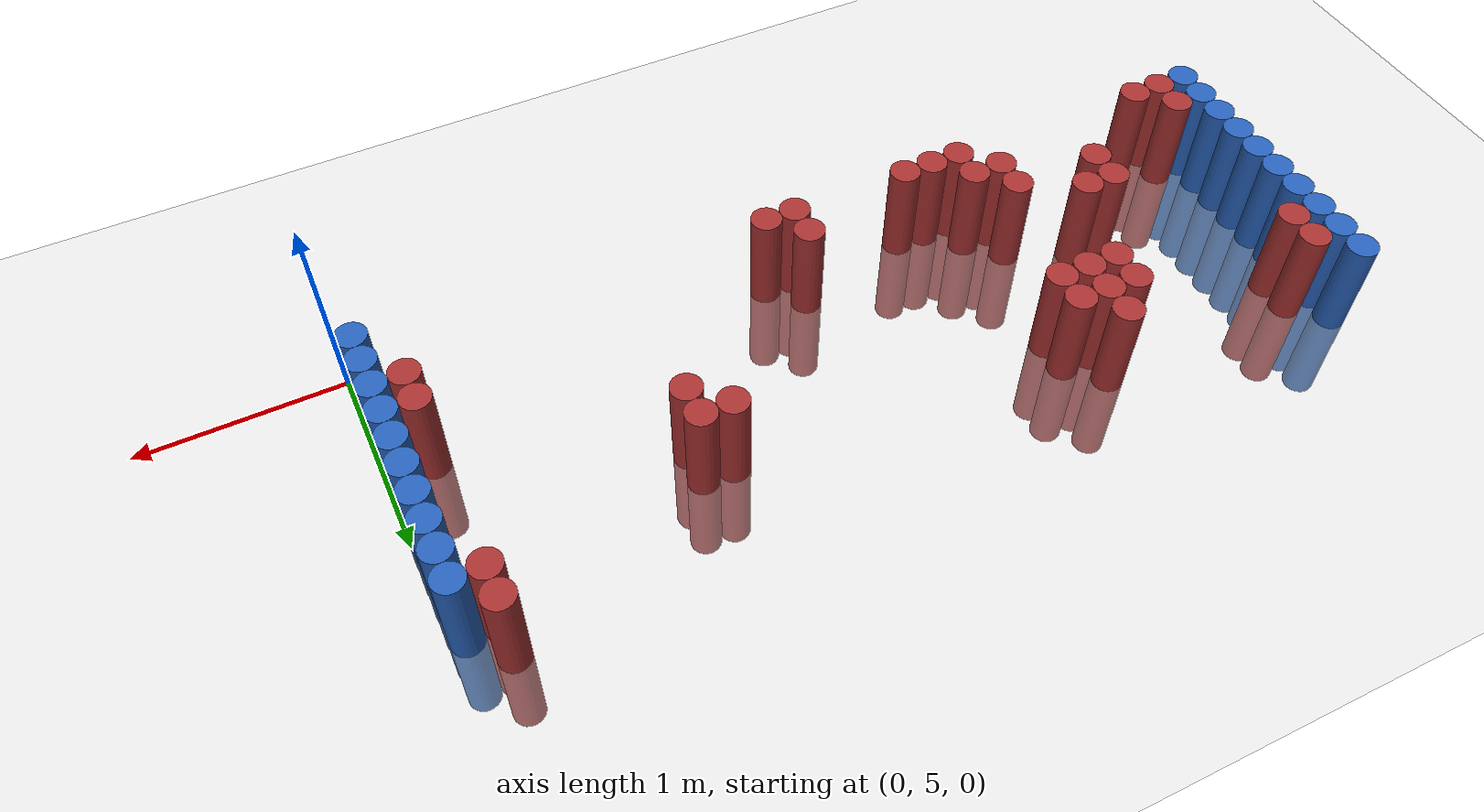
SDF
<sdf version="1.6">
 <world name="default">
  <model name="ground_plane">
   <static>1</static>
   <link name="link">
    <collision name="collision">
     <geometry><plane><normal>0 0 1</normal><size>100 100</size></plane></geometry>
     <surface><friction><ode><mu>100</mu><mu2>50</mu2></ode></friction></surface>
    </collision>
    <visual name="visual">
     <cast_shadows>0</cast_shadows>
     <geometry><plane><normal>0 0 1</normal><size>100 100</size></plane></geometry>
     <material>
      <script><uri>file://media/materials/scripts/gazebo.material</uri><name>Gazebo/Grey</name></script>
     </material>
    </visual>
   </link>
  </model>
  <model name="unit_cylinder_97">
   <static>1</static>
   <pose>-4.425000 5.325000 0.000000 0.000000 0.000000 0.000000</pose>
   <link name="link">
    <inertial>
     <mass>1</mass>
     <inertia><ixx>0.145833</ixx><ixy>0</ixy><ixz>0</ixz><iyy>0.145833</iyy><iyz>0</iyz><izz>0.125</izz></inertia>
    </inertial>
    <collision name="collision">
     <geometry><cylinder><radius>0.075000</radius><length>1</length></cylinder></geometry>
    </collision>
    <visual name="visual">
     <geometry><cylinder><radius>0.075000</radius><length>1</length></cylinder></geometry>
     <material>
      <ambient>0.152000 0.379000 0.720000 1</ambient>
      <diffuse>0.152000 0.379000 0.720000 1</diffuse>
     </material>
     <material>
      <script><name>Gazebo/Grey</name><uri>file://media/materials/scripts/gazebo.material</uri></script>
     </material>
    </visual>
   </link>
  </model>
  <model name="unit_cylinder_98">
   <static>1</static>
   <pose>-4.425000 5.475000 0.000000 0.000000 0.000000 0.000000</pose>
   <link name="link">
    <inertial>
     <mass>1</mass>
     <inertia><ixx>0.145833</ixx><ixy>0</ixy><ixz>0</ixz><iyy>0.145833</iyy><iyz>0</iyz><izz>0.125</izz></inertia>
    </inertial>
    <collision name="collision">
     <geometry><cylinder><radius>0.075000</radius><length>1</length></cylinder></geometry>
    </collision>
    <visual name="visual">
     <geometry><cylinder><radius>0.075000</radius><length>1</length></cylinder></geometry>
     <material>
      <ambient>0.152000 0.379000 0.720000 1</ambient>
      <diffuse>0.152000 0.379000 0.720000 1</diffuse>
     </material>
     <material>
      <script><name>Gazebo/Grey</name><uri>file://media/materials/scripts/gazebo.material</uri></script>
     </material>
    </visual>
   </link>
  </model>
  <model name="unit_cylinder_99">
   <static>1</static>
   <pose>-4.425000 5.625000 0.000000 0.000000 0.000000 0.000000</pose>
   <link name="link">
    <inertial>
     <mass>1</mass>
     <inertia><ixx>0.145833</ixx><ixy>0</ixy><ixz>0</ixz><iyy>0.145833</iyy><iyz>0</iyz><izz>0.125</izz></inertia>
    </inertial>
    <collision name="collision">
     <geometry><cylinder><radius>0.075000</radius><length>1</length></cylinder></geometry>
    </collision>
    <visual name="visual">
     <geometry><cylinder><radius>0.075000</radius><length>1</length></cylinder></geometry>
     <material>
      <ambient>0.152000 0.379000 0.720000 1</ambient>
      <diffuse>0.152000 0.379000 0.720000 1</diffuse>
     </material>
     <material>
      <script><name>Gazebo/Grey</name><uri>file://media/materials/scripts/gazebo.material</uri></script>
     </material>
    </visual>
   </link>
  </model>
  <model name="unit_cylinder_100">
   <static>1</static>
   <pose>-4.425000 5.775000 0.000000 0.000000 0.000000 0.000000</pose>
   <link name="link">
    <inertial>
     <mass>1</mass>
     <inertia><ixx>0.145833</ixx><ixy>0</ixy><ixz>0</ixz><iyy>0.145833</iyy><iyz>0</iyz><izz>0.125</izz></inertia>
    </inertial>
    <collision name="collision">
     <geometry><cylinder><radius>0.075000</radius><length>1</length></cylinder></geometry>
    </collision>
    <visual name="visual">
     <geometry><cylinder><radius>0.075000</radius><length>1</length></cylinder></geometry>
     <material>
      <ambient>0.152000 0.379000 0.720000 1</ambient>
      <diffuse>0.152000 0.379000 0.720000 1</diffuse>
     </material>
     <material>
      <script><name>Gazebo/Grey</name><uri>file://media/materials/scripts/gazebo.material</uri></script>
     </material>
    </visual>
   </link>
  </model>
  <model name="unit_cylinder_101">
   <static>1</static>
   <pose>-4.425000 5.925000 0.000000 0.000000 0.000000 0.000000</pose>
   <link name="link">
    <inertial>
     <mass>1</mass>
     <inertia><ixx>0.145833</ixx><ixy>0</ixy><ixz>0</ixz><iyy>0.145833</iyy><iyz>0</iyz><izz>0.125</izz></inertia>
    </inertial>
    <collision name="collision">
     <geometry><cylinder><radius>0.075000</radius><length>1</length></cylinder></geometry>
    </collision>
    <visual name="visual">
     <geometry><cylinder><radius>0.075000</radius><length>1</length></cylinder></geometry>
     <material>
      <ambient>0.152000 0.379000 0.720000 1</ambient>
      <diffuse>0.152000 0.379000 0.720000 1</diffuse>
     </material>
     <material>
      <script><name>Gazebo/Grey</name><uri>file://media/materials/scripts/gazebo.material</uri></script>
     </material>
    </visual>
   </link>
  </model>
  <model name="unit_cylinder_102">
   <static>1</static>
   <pose>-4.425000 6.075000 0.000000 0.000000 0.000000 0.000000</pose>
   <link name="link">
    <inertial>
     <mass>1</mass>
     <inertia><ixx>0.145833</ixx><ixy>0</ixy><ixz>0</ixz><iyy>0.145833</iyy><iyz>0</iyz><izz>0.125</izz></inertia>
    </inertial>
    <collision name="collision">
     <geometry><cylinder><radius>0.075000</radius><length>1</length></cylinder></geometry>
    </collision>
    <visual name="visual">
     <geometry><cylinder><radius>0.075000</radius><length>1</length></cylinder></geometry>
     <material>
      <ambient>0.152000 0.379000 0.720000 1</ambient>
      <diffuse>0.152000 0.379000 0.720000 1</diffuse>
     </material>
     <material>
      <script><name>Gazebo/Grey</name><uri>file://media/materials/scripts/gazebo.material</uri></script>
     </material>
    </visual>
   </link>
  </model>
  <model name="unit_cylinder_103">
   <static>1</static>
   <pose>-4.425000 6.225000 0.000000 0.000000 0.000000 0.000000</pose>
   <link name="link">
    <inertial>
     <mass>1</mass>
     <inertia><ixx>0.145833</ixx><ixy>0</ixy><ixz>0</ixz><iyy>0.145833</iyy><iyz>0</iyz><izz>0.125</izz></inertia>
    </inertial>
    <collision name="collision">
     <geometry><cylinder><radius>0.075000</radius><length>1</length></cylinder></geometry>
    </collision>
    <visual name="visual">
     <geometry><cylinder><radius>0.075000</radius><length>1</length></cylinder></geometry>
     <material>
      <ambient>0.152000 0.379000 0.720000 1</ambient>
      <diffuse>0.152000 0.379000 0.720000 1</diffuse>
     </material>
     <material>
      <script><name>Gazebo/Grey</name><uri>file://media/materials/scripts/gazebo.material</uri></script>
     </material>
    </visual>
   </link>
  </model>
  <model name="unit_cylinder_104">
   <static>1</static>
   <pose>-4.425000 6.375000 0.000000 0.000000 0.000000 0.000000</pose>
   <link name="link">
    <inertial>
     <mass>1</mass>
     <inertia><ixx>0.145833</ixx><ixy>0</ixy><ixz>0</ixz><iyy>0.145833</iyy><iyz>0</iyz><izz>0.125</izz></inertia>
    </inertial>
    <collision name="collision">
     <geometry><cylinder><radius>0.075000</radius><length>1</length></cylinder></geometry>
    </collision>
    <visual name="visual">
     <geometry><cylinder><radius>0.075000</radius><length>1</length></cylinder></geometry>
     <material>
      <ambient>0.152000 0.379000 0.720000 1</ambient>
      <diffuse>0.152000 0.379000 0.720000 1</diffuse>
     </material>
     <material>
      <script><name>Gazebo/Grey</name><uri>file://media/materials/scripts/gazebo.material</uri></script>
     </material>
    </visual>
   </link>
  </model>
  <model name="unit_cylinder_105">
   <static>1</static>
   <pose>-4.425000 6.525000 0.000000 0.000000 0.000000 0.000000</pose>
   <link name="link">
    <inertial>
     <mass>1</mass>
     <inertia><ixx>0.145833</ixx><ixy>0</ixy><ixz>0</ixz><iyy>0.145833</iyy><iyz>0</iyz><izz>0.125</izz></inertia>
    </inertial>
    <collision name="collision">
     <geometry><cylinder><radius>0.075000</radius><length>1</length></cylinder></geometry>
    </collision>
    <visual name="visual">
     <geometry><cylinder><radius>0.075000</radius><length>1</length></cylinder></geometry>
     <material>
      <ambient>0.152000 0.379000 0.720000 1</ambient>
      <diffuse>0.152000 0.379000 0.720000 1</diffuse>
     </material>
     <material>
      <script><name>Gazebo/Grey</name><uri>file://media/materials/scripts/gazebo.material</uri></script>
     </material>
    </visual>
   </link>
  </model>
  <model name="unit_cylinder_106">
   <static>1</static>
   <pose>-4.425000 6.675000 0.000000 0.000000 0.000000 0.000000</pose>
   <link name="link">
    <inertial>
     <mass>1</mass>
     <inertia><ixx>0.145833</ixx><ixy>0</ixy><ixz>0</ixz><iyy>0.145833</iyy><iyz>0</iyz><izz>0.125</izz></inertia>
    </inertial>
    <collision name="collision">
     <geometry><cylinder><radius>0.075000</radius><length>1</length></cylinder></geometry>
    </collision>
    <visual name="visual">
     <geometry><cylinder><radius>0.075000</radius><length>1</length></cylinder></geometry>
     <material>
      <ambient>0.152000 0.379000 0.720000 1</ambient>
      <diffuse>0.152000 0.379000 0.720000 1</diffuse>
     </material>
     <material>
      <script><name>Gazebo/Grey</name><uri>file://media/materials/scripts/gazebo.material</uri></script>
     </material>
    </visual>
   </link>
  </model>
  <model name="unit_cylinder_127">
   <static>1</static>
   <pose>-4.275000 5.325000 0.000000 0.000000 0.000000 0.000000</pose>
   <link name="link">
    <inertial>
     <mass>1</mass>
     <inertia><ixx>0.145833</ixx><ixy>0</ixy><ixz>0</ixz><iyy>0.145833</iyy><iyz>0</iyz><izz>0.125</izz></inertia>
    </inertial>
    <collision name="collision">
     <geometry><cylinder><radius>0.075000</radius><length>1</length></cylinder></geometry>
    </collision>
    <visual name="visual">
     <geometry><cylinder><radius>0.075000</radius><length>1</length></cylinder></geometry>
     <material>
      <ambient>0.648000 0.192000 0.192000 1</ambient>
      <diffuse>0.648000 0.192000 0.192000 1</diffuse>
     </material>
     <material>
      <script><name>Gazebo/Grey</name><uri>file://media/materials/scripts/gazebo.material</uri></script>
     </material>
    </visual>
   </link>
  </model>
  <model name="unit_cylinder_128">
   <static>1</static>
   <pose>-4.275000 5.475000 0.000000 0.000000 0.000000 0.000000</pose>
   <link name="link">
    <inertial>
     <mass>1</mass>
     <inertia><ixx>0.145833</ixx><ixy>0</ixy><ixz>0</ixz><iyy>0.145833</iyy><iyz>0</iyz><izz>0.125</izz></inertia>
    </inertial>
    <collision name="collision">
     <geometry><cylinder><radius>0.075000</radius><length>1</length></cylinder></geometry>
    </collision>
    <visual name="visual">
     <geometry><cylinder><radius>0.075000</radius><length>1</length></cylinder></geometry>
     <material>
      <ambient>0.648000 0.192000 0.192000 1</ambient>
      <diffuse>0.648000 0.192000 0.192000 1</diffuse>
     </material>
     <material>
      <script><name>Gazebo/Grey</name><uri>file://media/materials/scripts/gazebo.material</uri></script>
     </material>
    </visual>
   </link>
  </model>
  <model name="unit_cylinder_129">
   <static>1</static>
   <pose>-4.275000 6.375000 0.000000 0.000000 0.000000 0.000000</pose>
   <link name="link">
    <inertial>
     <mass>1</mass>
     <inertia><ixx>0.145833</ixx><ixy>0</ixy><ixz>0</ixz><iyy>0.145833</iyy><iyz>0</iyz><izz>0.125</izz></inertia>
    </inertial>
    <collision name="collision">
     <geometry><cylinder><radius>0.075000</radius><length>1</length></cylinder></geometry>
    </collision>
    <visual name="visual">
     <geometry><cylinder><radius>0.075000</radius><length>1</length></cylinder></geometry>
     <material>
      <ambient>0.648000 0.192000 0.192000 1</ambient>
      <diffuse>0.648000 0.192000 0.192000 1</diffuse>
     </material>
     <material>
      <script><name>Gazebo/Grey</name><uri>file://media/materials/scripts/gazebo.material</uri></script>
     </material>
    </visual>
   </link>
  </model>
  <model name="unit_cylinder_130">
   <static>1</static>
   <pose>-4.275000 6.525000 0.000000 0.000000 0.000000 0.000000</pose>
   <link name="link">
    <inertial>
     <mass>1</mass>
     <inertia><ixx>0.145833</ixx><ixy>0</ixy><ixz>0</ixz><iyy>0.145833</iyy><iyz>0</iyz><izz>0.125</izz></inertia>
    </inertial>
    <collision name="collision">
     <geometry><cylinder><radius>0.075000</radius><length>1</length></cylinder></geometry>
    </collision>
    <visual name="visual">
     <geometry><cylinder><radius>0.075000</radius><length>1</length></cylinder></geometry>
     <material>
      <ambient>0.648000 0.192000 0.192000 1</ambient>
      <diffuse>0.648000 0.192000 0.192000 1</diffuse>
     </material>
     <material>
      <script><name>Gazebo/Grey</name><uri>file://media/materials/scripts/gazebo.material</uri></script>
     </material>
    </visual>
   </link>
  </model>
  <model name="unit_cylinder_135">
   <static>1</static>
   <pose>-4.125000 5.325000 0.000000 0.000000 0.000000 0.000000</pose>
   <link name="link">
    <inertial>
     <mass>1</mass>
     <inertia><ixx>0.145833</ixx><ixy>0</ixy><ixz>0</ixz><iyy>0.145833</iyy><iyz>0</iyz><izz>0.125</izz></inertia>
    </inertial>
    <collision name="collision">
     <geometry><cylinder><radius>0.075000</radius><length>1</length></cylinder></geometry>
    </collision>
    <visual name="visual">
     <geometry><cylinder><radius>0.075000</radius><length>1</length></cylinder></geometry>
     <material>
      <ambient>0.648000 0.192000 0.192000 1</ambient>
      <diffuse>0.648000 0.192000 0.192000 1</diffuse>
     </material>
     <material>
      <script><name>Gazebo/Grey</name><uri>file://media/materials/scripts/gazebo.material</uri></script>
     </material>
    </visual>
   </link>
  </model>
  <model name="unit_cylinder_142">
   <static>1</static>
   <pose>-3.675000 5.625000 0.000000 0.000000 0.000000 0.000000</pose>
   <link name="link">
    <inertial>
     <mass>1</mass>
     <inertia><ixx>0.145833</ixx><ixy>0</ixy><ixz>0</ixz><iyy>0.145833</iyy><iyz>0</iyz><izz>0.125</izz></inertia>
    </inertial>
    <collision name="collision">
     <geometry><cylinder><radius>0.075000</radius><length>1</length></cylinder></geometry>
    </collision>
    <visual name="visual">
     <geometry><cylinder><radius>0.075000</radius><length>1</length></cylinder></geometry>
     <material>
      <ambient>0.648000 0.192000 0.192000 1</ambient>
      <diffuse>0.648000 0.192000 0.192000 1</diffuse>
     </material>
     <material>
      <script><name>Gazebo/Grey</name><uri>file://media/materials/scripts/gazebo.material</uri></script>
     </material>
    </visual>
   </link>
  </model>
  <model name="unit_cylinder_143">
   <static>1</static>
   <pose>-3.675000 5.775000 0.000000 0.000000 0.000000 0.000000</pose>
   <link name="link">
    <inertial>
     <mass>1</mass>
     <inertia><ixx>0.145833</ixx><ixy>0</ixy><ixz>0</ixz><iyy>0.145833</iyy><iyz>0</iyz><izz>0.125</izz></inertia>
    </inertial>
    <collision name="collision">
     <geometry><cylinder><radius>0.075000</radius><length>1</length></cylinder></geometry>
    </collision>
    <visual name="visual">
     <geometry><cylinder><radius>0.075000</radius><length>1</length></cylinder></geometry>
     <material>
      <ambient>0.648000 0.192000 0.192000 1</ambient>
      <diffuse>0.648000 0.192000 0.192000 1</diffuse>
     </material>
     <material>
      <script><name>Gazebo/Grey</name><uri>file://media/materials/scripts/gazebo.material</uri></script>
     </material>
    </visual>
   </link>
  </model>
  <model name="unit_cylinder_149">
   <static>1</static>
   <pose>-3.525000 5.775000 0.000000 0.000000 0.000000 0.000000</pose>
   <link name="link">
    <inertial>
     <mass>1</mass>
     <inertia><ixx>0.145833</ixx><ixy>0</ixy><ixz>0</ixz><iyy>0.145833</iyy><iyz>0</iyz><izz>0.125</izz></inertia>
    </inertial>
    <collision name="collision">
     <geometry><cylinder><radius>0.075000</radius><length>1</length></cylinder></geometry>
    </collision>
    <visual name="visual">
     <geometry><cylinder><radius>0.075000</radius><length>1</length></cylinder></geometry>
     <material>
      <ambient>0.648000 0.192000 0.192000 1</ambient>
      <diffuse>0.648000 0.192000 0.192000 1</diffuse>
     </material>
     <material>
      <script><name>Gazebo/Grey</name><uri>file://media/materials/scripts/gazebo.material</uri></script>
     </material>
    </visual>
   </link>
  </model>
  <model name="unit_cylinder_153">
   <static>1</static>
   <pose>-3.375000 6.225000 0.000000 0.000000 0.000000 0.000000</pose>
   <link name="link">
    <inertial>
     <mass>1</mass>
     <inertia><ixx>0.145833</ixx><ixy>0</ixy><ixz>0</ixz><iyy>0.145833</iyy><iyz>0</iyz><izz>0.125</izz></inertia>
    </inertial>
    <collision name="collision">
     <geometry><cylinder><radius>0.075000</radius><length>1</length></cylinder></geometry>
    </collision>
    <visual name="visual">
     <geometry><cylinder><radius>0.075000</radius><length>1</length></cylinder></geometry>
     <material>
      <ambient>0.648000 0.192000 0.192000 1</ambient>
      <diffuse>0.648000 0.192000 0.192000 1</diffuse>
     </material>
     <material>
      <script><name>Gazebo/Grey</name><uri>file://media/materials/scripts/gazebo.material</uri></script>
     </material>
    </visual>
   </link>
  </model>
  <model name="unit_cylinder_154">
   <static>1</static>
   <pose>-3.375000 6.375000 0.000000 0.000000 0.000000 0.000000</pose>
   <link name="link">
    <inertial>
     <mass>1</mass>
     <inertia><ixx>0.145833</ixx><ixy>0</ixy><ixz>0</ixz><iyy>0.145833</iyy><iyz>0</iyz><izz>0.125</izz></inertia>
    </inertial>
    <collision name="collision">
     <geometry><cylinder><radius>0.075000</radius><length>1</length></cylinder></geometry>
    </collision>
    <visual name="visual">
     <geometry><cylinder><radius>0.075000</radius><length>1</length></cylinder></geometry>
     <material>
      <ambient>0.648000 0.192000 0.192000 1</ambient>
      <diffuse>0.648000 0.192000 0.192000 1</diffuse>
     </material>
     <material>
      <script><name>Gazebo/Grey</name><uri>file://media/materials/scripts/gazebo.material</uri></script>
     </material>
    </visual>
   </link>
  </model>
  <model name="unit_cylinder_156">
   <static>1</static>
   <pose>-3.225000 5.475000 0.000000 0.000000 0.000000 0.000000</pose>
   <link name="link">
    <inertial>
     <mass>1</mass>
     <inertia><ixx>0.145833</ixx><ixy>0</ixy><ixz>0</ixz><iyy>0.145833</iyy><iyz>0</iyz><izz>0.125</izz></inertia>
    </inertial>
    <collision name="collision">
     <geometry><cylinder><radius>0.075000</radius><length>1</length></cylinder></geometry>
    </collision>
    <visual name="visual">
     <geometry><cylinder><radius>0.075000</radius><length>1</length></cylinder></geometry>
     <material>
      <ambient>0.648000 0.192000 0.192000 1</ambient>
      <diffuse>0.648000 0.192000 0.192000 1</diffuse>
     </material>
     <material>
      <script><name>Gazebo/Grey</name><uri>file://media/materials/scripts/gazebo.material</uri></script>
     </material>
    </visual>
   </link>
  </model>
  <model name="unit_cylinder_157">
   <static>1</static>
   <pose>-3.225000 5.625000 0.000000 0.000000 0.000000 0.000000</pose>
   <link name="link">
    <inertial>
     <mass>1</mass>
     <inertia><ixx>0.145833</ixx><ixy>0</ixy><ixz>0</ixz><iyy>0.145833</iyy><iyz>0</iyz><izz>0.125</izz></inertia>
    </inertial>
    <collision name="collision">
     <geometry><cylinder><radius>0.075000</radius><length>1</length></cylinder></geometry>
    </collision>
    <visual name="visual">
     <geometry><cylinder><radius>0.075000</radius><length>1</length></cylinder></geometry>
     <material>
      <ambient>0.648000 0.192000 0.192000 1</ambient>
      <diffuse>0.648000 0.192000 0.192000 1</diffuse>
     </material>
     <material>
      <script><name>Gazebo/Grey</name><uri>file://media/materials/scripts/gazebo.material</uri></script>
     </material>
    </visual>
   </link>
  </model>
  <model name="unit_cylinder_158">
   <static>1</static>
   <pose>-3.225000 6.225000 0.000000 0.000000 0.000000 0.000000</pose>
   <link name="link">
    <inertial>
     <mass>1</mass>
     <inertia><ixx>0.145833</ixx><ixy>0</ixy><ixz>0</ixz><iyy>0.145833</iyy><iyz>0</iyz><izz>0.125</izz></inertia>
    </inertial>
    <collision name="collision">
     <geometry><cylinder><radius>0.075000</radius><length>1</length></cylinder></geometry>
    </collision>
    <visual name="visual">
     <geometry><cylinder><radius>0.075000</radius><length>1</length></cylinder></geometry>
     <material>
      <ambient>0.648000 0.192000 0.192000 1</ambient>
      <diffuse>0.648000 0.192000 0.192000 1</diffuse>
     </material>
     <material>
      <script><name>Gazebo/Grey</name><uri>file://media/materials/scripts/gazebo.material</uri></script>
     </material>
    </visual>
   </link>
  </model>
  <model name="unit_cylinder_159">
   <static>1</static>
   <pose>-3.225000 6.375000 0.000000 0.000000 0.000000 0.000000</pose>
   <link name="link">
    <inertial>
     <mass>1</mass>
     <inertia><ixx>0.145833</ixx><ixy>0</ixy><ixz>0</ixz><iyy>0.145833</iyy><iyz>0</iyz><izz>0.125</izz></inertia>
    </inertial>
    <collision name="collision">
     <geometry><cylinder><radius>0.075000</radius><length>1</length></cylinder></geometry>
    </collision>
    <visual name="visual">
     <geometry><cylinder><radius>0.075000</radius><length>1</length></cylinder></geometry>
     <material>
      <ambient>0.648000 0.192000 0.192000 1</ambient>
      <diffuse>0.648000 0.192000 0.192000 1</diffuse>
     </material>
     <material>
      <script><name>Gazebo/Grey</name><uri>file://media/materials/scripts/gazebo.material</uri></script>
     </material>
    </visual>
   </link>
  </model>
  <model name="unit_cylinder_160">
   <static>1</static>
   <pose>-3.225000 6.525000 0.000000 0.000000 0.000000 0.000000</pose>
   <link name="link">
    <inertial>
     <mass>1</mass>
     <inertia><ixx>0.145833</ixx><ixy>0</ixy><ixz>0</ixz><iyy>0.145833</iyy><iyz>0</iyz><izz>0.125</izz></inertia>
    </inertial>
    <collision name="collision">
     <geometry><cylinder><radius>0.075000</radius><length>1</length></cylinder></geometry>
    </collision>
    <visual name="visual">
     <geometry><cylinder><radius>0.075000</radius><length>1</length></cylinder></geometry>
     <material>
      <ambient>0.648000 0.192000 0.192000 1</ambient>
      <diffuse>0.648000 0.192000 0.192000 1</diffuse>
     </material>
     <material>
      <script><name>Gazebo/Grey</name><uri>file://media/materials/scripts/gazebo.material</uri></script>
     </material>
    </visual>
   </link>
  </model>
  <model name="unit_cylinder_162">
   <static>1</static>
   <pose>-3.075000 5.325000 0.000000 0.000000 0.000000 0.000000</pose>
   <link name="link">
    <inertial>
     <mass>1</mass>
     <inertia><ixx>0.145833</ixx><ixy>0</ixy><ixz>0</ixz><iyy>0.145833</iyy><iyz>0</iyz><izz>0.125</izz></inertia>
    </inertial>
    <collision name="collision">
     <geometry><cylinder><radius>0.075000</radius><length>1</length></cylinder></geometry>
    </collision>
    <visual name="visual">
     <geometry><cylinder><radius>0.075000</radius><length>1</length></cylinder></geometry>
     <material>
      <ambient>0.648000 0.192000 0.192000 1</ambient>
      <diffuse>0.648000 0.192000 0.192000 1</diffuse>
     </material>
     <material>
      <script><name>Gazebo/Grey</name><uri>file://media/materials/scripts/gazebo.material</uri></script>
     </material>
    </visual>
   </link>
  </model>
  <model name="unit_cylinder_163">
   <static>1</static>
   <pose>-3.075000 5.475000 0.000000 0.000000 0.000000 0.000000</pose>
   <link name="link">
    <inertial>
     <mass>1</mass>
     <inertia><ixx>0.145833</ixx><ixy>0</ixy><ixz>0</ixz><iyy>0.145833</iyy><iyz>0</iyz><izz>0.125</izz></inertia>
    </inertial>
    <collision name="collision">
     <geometry><cylinder><radius>0.075000</radius><length>1</length></cylinder></geometry>
    </collision>
    <visual name="visual">
     <geometry><cylinder><radius>0.075000</radius><length>1</length></cylinder></geometry>
     <material>
      <ambient>0.648000 0.192000 0.192000 1</ambient>
      <diffuse>0.648000 0.192000 0.192000 1</diffuse>
     </material>
     <material>
      <script><name>Gazebo/Grey</name><uri>file://media/materials/scripts/gazebo.material</uri></script>
     </material>
    </visual>
   </link>
  </model>
  <model name="unit_cylinder_164">
   <static>1</static>
   <pose>-3.075000 6.225000 0.000000 0.000000 0.000000 0.000000</pose>
   <link name="link">
    <inertial>
     <mass>1</mass>
     <inertia><ixx>0.145833</ixx><ixy>0</ixy><ixz>0</ixz><iyy>0.145833</iyy><iyz>0</iyz><izz>0.125</izz></inertia>
    </inertial>
    <collision name="collision">
     <geometry><cylinder><radius>0.075000</radius><length>1</length></cylinder></geometry>
    </collision>
    <visual name="visual">
     <geometry><cylinder><radius>0.075000</radius><length>1</length></cylinder></geometry>
     <material>
      <ambient>0.648000 0.192000 0.192000 1</ambient>
      <diffuse>0.648000 0.192000 0.192000 1</diffuse>
     </material>
     <material>
      <script><name>Gazebo/Grey</name><uri>file://media/materials/scripts/gazebo.material</uri></script>
     </material>
    </visual>
   </link>
  </model>
  <model name="unit_cylinder_165">
   <static>1</static>
   <pose>-3.075000 6.375000 0.000000 0.000000 0.000000 0.000000</pose>
   <link name="link">
    <inertial>
     <mass>1</mass>
     <inertia><ixx>0.145833</ixx><ixy>0</ixy><ixz>0</ixz><iyy>0.145833</iyy><iyz>0</iyz><izz>0.125</izz></inertia>
    </inertial>
    <collision name="collision">
     <geometry><cylinder><radius>0.075000</radius><length>1</length></cylinder></geometry>
    </collision>
    <visual name="visual">
     <geometry><cylinder><radius>0.075000</radius><length>1</length></cylinder></geometry>
     <material>
      <ambient>0.648000 0.192000 0.192000 1</ambient>
      <diffuse>0.648000 0.192000 0.192000 1</diffuse>
     </material>
     <material>
      <script><name>Gazebo/Grey</name><uri>file://media/materials/scripts/gazebo.material</uri></script>
     </material>
    </visual>
   </link>
  </model>
  <model name="unit_cylinder_169">
   <static>1</static>
   <pose>-2.925000 5.325000 0.000000 0.000000 0.000000 0.000000</pose>
   <link name="link">
    <inertial>
     <mass>1</mass>
     <inertia><ixx>0.145833</ixx><ixy>0</ixy><ixz>0</ixz><iyy>0.145833</iyy><iyz>0</iyz><izz>0.125</izz></inertia>
    </inertial>
    <collision name="collision">
     <geometry><cylinder><radius>0.075000</radius><length>1</length></cylinder></geometry>
    </collision>
    <visual name="visual">
     <geometry><cylinder><radius>0.075000</radius><length>1</length></cylinder></geometry>
     <material>
      <ambient>0.648000 0.192000 0.192000 1</ambient>
      <diffuse>0.648000 0.192000 0.192000 1</diffuse>
     </material>
     <material>
      <script><name>Gazebo/Grey</name><uri>file://media/materials/scripts/gazebo.material</uri></script>
     </material>
    </visual>
   </link>
  </model>
  <model name="unit_cylinder_172">
   <static>1</static>
   <pose>-2.775000 5.325000 0.000000 0.000000 0.000000 0.000000</pose>
   <link name="link">
    <inertial>
     <mass>1</mass>
     <inertia><ixx>0.145833</ixx><ixy>0</ixy><ixz>0</ixz><iyy>0.145833</iyy><iyz>0</iyz><izz>0.125</izz></inertia>
    </inertial>
    <collision name="collision">
     <geometry><cylinder><radius>0.075000</radius><length>1</length></cylinder></geometry>
    </collision>
    <visual name="visual">
     <geometry><cylinder><radius>0.075000</radius><length>1</length></cylinder></geometry>
     <material>
      <ambient>0.648000 0.192000 0.192000 1</ambient>
      <diffuse>0.648000 0.192000 0.192000 1</diffuse>
     </material>
     <material>
      <script><name>Gazebo/Grey</name><uri>file://media/materials/scripts/gazebo.material</uri></script>
     </material>
    </visual>
   </link>
  </model>
  <model name="unit_cylinder_180">
   <static>1</static>
   <pose>-2.175000 5.325000 0.000000 0.000000 0.000000 0.000000</pose>
   <link name="link">
    <inertial>
     <mass>1</mass>
     <inertia><ixx>0.145833</ixx><ixy>0</ixy><ixz>0</ixz><iyy>0.145833</iyy><iyz>0</iyz><izz>0.125</izz></inertia>
    </inertial>
    <collision name="collision">
     <geometry><cylinder><radius>0.075000</radius><length>1</length></cylinder></geometry>
    </collision>
    <visual name="visual">
     <geometry><cylinder><radius>0.075000</radius><length>1</length></cylinder></geometry>
     <material>
      <ambient>0.648000 0.192000 0.192000 1</ambient>
      <diffuse>0.648000 0.192000 0.192000 1</diffuse>
     </material>
     <material>
      <script><name>Gazebo/Grey</name><uri>file://media/materials/scripts/gazebo.material</uri></script>
     </material>
    </visual>
   </link>
  </model>
  <model name="unit_cylinder_181">
   <static>1</static>
   <pose>-2.175000 5.475000 0.000000 0.000000 0.000000 0.000000</pose>
   <link name="link">
    <inertial>
     <mass>1</mass>
     <inertia><ixx>0.145833</ixx><ixy>0</ixy><ixz>0</ixz><iyy>0.145833</iyy><iyz>0</iyz><izz>0.125</izz></inertia>
    </inertial>
    <collision name="collision">
     <geometry><cylinder><radius>0.075000</radius><length>1</length></cylinder></geometry>
    </collision>
    <visual name="visual">
     <geometry><cylinder><radius>0.075000</radius><length>1</length></cylinder></geometry>
     <material>
      <ambient>0.648000 0.192000 0.192000 1</ambient>
      <diffuse>0.648000 0.192000 0.192000 1</diffuse>
     </material>
     <material>
      <script><name>Gazebo/Grey</name><uri>file://media/materials/scripts/gazebo.material</uri></script>
     </material>
    </visual>
   </link>
  </model>
  <model name="unit_cylinder_184">
   <static>1</static>
   <pose>-2.025000 5.325000 0.000000 0.000000 0.000000 0.000000</pose>
   <link name="link">
    <inertial>
     <mass>1</mass>
     <inertia><ixx>0.145833</ixx><ixy>0</ixy><ixz>0</ixz><iyy>0.145833</iyy><iyz>0</iyz><izz>0.125</izz></inertia>
    </inertial>
    <collision name="collision">
     <geometry><cylinder><radius>0.075000</radius><length>1</length></cylinder></geometry>
    </collision>
    <visual name="visual">
     <geometry><cylinder><radius>0.075000</radius><length>1</length></cylinder></geometry>
     <material>
      <ambient>0.648000 0.192000 0.192000 1</ambient>
      <diffuse>0.648000 0.192000 0.192000 1</diffuse>
     </material>
     <material>
      <script><name>Gazebo/Grey</name><uri>file://media/materials/scripts/gazebo.material</uri></script>
     </material>
    </visual>
   </link>
  </model>
  <model name="unit_cylinder_204">
   <static>1</static>
   <pose>-1.425000 6.225000 0.000000 0.000000 0.000000 0.000000</pose>
   <link name="link">
    <inertial>
     <mass>1</mass>
     <inertia><ixx>0.145833</ixx><ixy>0</ixy><ixz>0</ixz><iyy>0.145833</iyy><iyz>0</iyz><izz>0.125</izz></inertia>
    </inertial>
    <collision name="collision">
     <geometry><cylinder><radius>0.075000</radius><length>1</length></cylinder></geometry>
    </collision>
    <visual name="visual">
     <geometry><cylinder><radius>0.075000</radius><length>1</length></cylinder></geometry>
     <material>
      <ambient>0.648000 0.192000 0.192000 1</ambient>
      <diffuse>0.648000 0.192000 0.192000 1</diffuse>
     </material>
     <material>
      <script><name>Gazebo/Grey</name><uri>file://media/materials/scripts/gazebo.material</uri></script>
     </material>
    </visual>
   </link>
  </model>
  <model name="unit_cylinder_207">
   <static>1</static>
   <pose>-1.275000 6.075000 0.000000 0.000000 0.000000 0.000000</pose>
   <link name="link">
    <inertial>
     <mass>1</mass>
     <inertia><ixx>0.145833</ixx><ixy>0</ixy><ixz>0</ixz><iyy>0.145833</iyy><iyz>0</iyz><izz>0.125</izz></inertia>
    </inertial>
    <collision name="collision">
     <geometry><cylinder><radius>0.075000</radius><length>1</length></cylinder></geometry>
    </collision>
    <visual name="visual">
     <geometry><cylinder><radius>0.075000</radius><length>1</length></cylinder></geometry>
     <material>
      <ambient>0.648000 0.192000 0.192000 1</ambient>
      <diffuse>0.648000 0.192000 0.192000 1</diffuse>
     </material>
     <material>
      <script><name>Gazebo/Grey</name><uri>file://media/materials/scripts/gazebo.material</uri></script>
     </material>
    </visual>
   </link>
  </model>
  <model name="unit_cylinder_208">
   <static>1</static>
   <pose>-1.275000 6.225000 0.000000 0.000000 0.000000 0.000000</pose>
   <link name="link">
    <inertial>
     <mass>1</mass>
     <inertia><ixx>0.145833</ixx><ixy>0</ixy><ixz>0</ixz><iyy>0.145833</iyy><iyz>0</iyz><izz>0.125</izz></inertia>
    </inertial>
    <collision name="collision">
     <geometry><cylinder><radius>0.075000</radius><length>1</length></cylinder></geometry>
    </collision>
    <visual name="visual">
     <geometry><cylinder><radius>0.075000</radius><length>1</length></cylinder></geometry>
     <material>
      <ambient>0.648000 0.192000 0.192000 1</ambient>
      <diffuse>0.648000 0.192000 0.192000 1</diffuse>
     </material>
     <material>
      <script><name>Gazebo/Grey</name><uri>file://media/materials/scripts/gazebo.material</uri></script>
     </material>
    </visual>
   </link>
  </model>
  <model name="unit_cylinder_213">
   <static>1</static>
   <pose>-0.225000 5.475000 0.000000 0.000000 0.000000 0.000000</pose>
   <link name="link">
    <inertial>
     <mass>1</mass>
     <inertia><ixx>0.145833</ixx><ixy>0</ixy><ixz>0</ixz><iyy>0.145833</iyy><iyz>0</iyz><izz>0.125</izz></inertia>
    </inertial>
    <collision name="collision">
     <geometry><cylinder><radius>0.075000</radius><length>1</length></cylinder></geometry>
    </collision>
    <visual name="visual">
     <geometry><cylinder><radius>0.075000</radius><length>1</length></cylinder></geometry>
     <material>
      <ambient>0.648000 0.192000 0.192000 1</ambient>
      <diffuse>0.648000 0.192000 0.192000 1</diffuse>
     </material>
     <material>
      <script><name>Gazebo/Grey</name><uri>file://media/materials/scripts/gazebo.material</uri></script>
     </material>
    </visual>
   </link>
  </model>
  <model name="unit_cylinder_214">
   <static>1</static>
   <pose>-0.225000 5.625000 0.000000 0.000000 0.000000 0.000000</pose>
   <link name="link">
    <inertial>
     <mass>1</mass>
     <inertia><ixx>0.145833</ixx><ixy>0</ixy><ixz>0</ixz><iyy>0.145833</iyy><iyz>0</iyz><izz>0.125</izz></inertia>
    </inertial>
    <collision name="collision">
     <geometry><cylinder><radius>0.075000</radius><length>1</length></cylinder></geometry>
    </collision>
    <visual name="visual">
     <geometry><cylinder><radius>0.075000</radius><length>1</length></cylinder></geometry>
     <material>
      <ambient>0.648000 0.192000 0.192000 1</ambient>
      <diffuse>0.648000 0.192000 0.192000 1</diffuse>
     </material>
     <material>
      <script><name>Gazebo/Grey</name><uri>file://media/materials/scripts/gazebo.material</uri></script>
     </material>
    </visual>
   </link>
  </model>
  <model name="unit_cylinder_215">
   <static>1</static>
   <pose>-0.225000 6.525000 0.000000 0.000000 0.000000 0.000000</pose>
   <link name="link">
    <inertial>
     <mass>1</mass>
     <inertia><ixx>0.145833</ixx><ixy>0</ixy><ixz>0</ixz><iyy>0.145833</iyy><iyz>0</iyz><izz>0.125</izz></inertia>
    </inertial>
    <collision name="collision">
     <geometry><cylinder><radius>0.075000</radius><length>1</length></cylinder></geometry>
    </collision>
    <visual name="visual">
     <geometry><cylinder><radius>0.075000</radius><length>1</length></cylinder></geometry>
     <material>
      <ambient>0.648000 0.192000 0.192000 1</ambient>
      <diffuse>0.648000 0.192000 0.192000 1</diffuse>
     </material>
     <material>
      <script><name>Gazebo/Grey</name><uri>file://media/materials/scripts/gazebo.material</uri></script>
     </material>
    </visual>
   </link>
  </model>
  <model name="unit_cylinder_216">
   <static>1</static>
   <pose>-0.225000 6.675000 0.000000 0.000000 0.000000 0.000000</pose>
   <link name="link">
    <inertial>
     <mass>1</mass>
     <inertia><ixx>0.145833</ixx><ixy>0</ixy><ixz>0</ixz><iyy>0.145833</iyy><iyz>0</iyz><izz>0.125</izz></inertia>
    </inertial>
    <collision name="collision">
     <geometry><cylinder><radius>0.075000</radius><length>1</length></cylinder></geometry>
    </collision>
    <visual name="visual">
     <geometry><cylinder><radius>0.075000</radius><length>1</length></cylinder></geometry>
     <material>
      <ambient>0.648000 0.192000 0.192000 1</ambient>
      <diffuse>0.648000 0.192000 0.192000 1</diffuse>
     </material>
     <material>
      <script><name>Gazebo/Grey</name><uri>file://media/materials/scripts/gazebo.material</uri></script>
     </material>
    </visual>
   </link>
  </model>
  <model name="unit_cylinder_224">
   <static>1</static>
   <pose>-0.075000 5.175000 0.000000 0.000000 0.000000 0.000000</pose>
   <link name="link">
    <inertial>
     <mass>1</mass>
     <inertia><ixx>0.145833</ixx><ixy>0</ixy><ixz>0</ixz><iyy>0.145833</iyy><iyz>0</iyz><izz>0.125</izz></inertia>
    </inertial>
    <collision name="collision">
     <geometry><cylinder><radius>0.075000</radius><length>1</length></cylinder></geometry>
    </collision>
    <visual name="visual">
     <geometry><cylinder><radius>0.075000</radius><length>1</length></cylinder></geometry>
     <material>
      <ambient>0.152000 0.379000 0.720000 1</ambient>
      <diffuse>0.152000 0.379000 0.720000 1</diffuse>
     </material>
     <material>
      <script><name>Gazebo/Grey</name><uri>file://media/materials/scripts/gazebo.material</uri></script>
     </material>
    </visual>
   </link>
  </model>
  <model name="unit_cylinder_225">
   <static>1</static>
   <pose>-0.075000 5.325000 0.000000 0.000000 0.000000 0.000000</pose>
   <link name="link">
    <inertial>
     <mass>1</mass>
     <inertia><ixx>0.145833</ixx><ixy>0</ixy><ixz>0</ixz><iyy>0.145833</iyy><iyz>0</iyz><izz>0.125</izz></inertia>
    </inertial>
    <collision name="collision">
     <geometry><cylinder><radius>0.075000</radius><length>1</length></cylinder></geometry>
    </collision>
    <visual name="visual">
     <geometry><cylinder><radius>0.075000</radius><length>1</length></cylinder></geometry>
     <material>
      <ambient>0.152000 0.379000 0.720000 1</ambient>
      <diffuse>0.152000 0.379000 0.720000 1</diffuse>
     </material>
     <material>
      <script><name>Gazebo/Grey</name><uri>file://media/materials/scripts/gazebo.material</uri></script>
     </material>
    </visual>
   </link>
  </model>
  <model name="unit_cylinder_226">
   <static>1</static>
   <pose>-0.075000 5.475000 0.000000 0.000000 0.000000 0.000000</pose>
   <link name="link">
    <inertial>
     <mass>1</mass>
     <inertia><ixx>0.145833</ixx><ixy>0</ixy><ixz>0</ixz><iyy>0.145833</iyy><iyz>0</iyz><izz>0.125</izz></inertia>
    </inertial>
    <collision name="collision">
     <geometry><cylinder><radius>0.075000</radius><length>1</length></cylinder></geometry>
    </collision>
    <visual name="visual">
     <geometry><cylinder><radius>0.075000</radius><length>1</length></cylinder></geometry>
     <material>
      <ambient>0.152000 0.379000 0.720000 1</ambient>
      <diffuse>0.152000 0.379000 0.720000 1</diffuse>
     </material>
     <material>
      <script><name>Gazebo/Grey</name><uri>file://media/materials/scripts/gazebo.material</uri></script>
     </material>
    </visual>
   </link>
  </model>
  <model name="unit_cylinder_227">
   <static>1</static>
   <pose>-0.075000 5.625000 0.000000 0.000000 0.000000 0.000000</pose>
   <link name="link">
    <inertial>
     <mass>1</mass>
     <inertia><ixx>0.145833</ixx><ixy>0</ixy><ixz>0</ixz><iyy>0.145833</iyy><iyz>0</iyz><izz>0.125</izz></inertia>
    </inertial>
    <collision name="collision">
     <geometry><cylinder><radius>0.075000</radius><length>1</length></cylinder></geometry>
    </collision>
    <visual name="visual">
     <geometry><cylinder><radius>0.075000</radius><length>1</length></cylinder></geometry>
     <material>
      <ambient>0.152000 0.379000 0.720000 1</ambient>
      <diffuse>0.152000 0.379000 0.720000 1</diffuse>
     </material>
     <material>
      <script><name>Gazebo/Grey</name><uri>file://media/materials/scripts/gazebo.material</uri></script>
     </material>
    </visual>
   </link>
  </model>
  <model name="unit_cylinder_228">
   <static>1</static>
   <pose>-0.075000 5.775000 0.000000 0.000000 0.000000 0.000000</pose>
   <link name="link">
    <inertial>
     <mass>1</mass>
     <inertia><ixx>0.145833</ixx><ixy>0</ixy><ixz>0</ixz><iyy>0.145833</iyy><iyz>0</iyz><izz>0.125</izz></inertia>
    </inertial>
    <collision name="collision">
     <geometry><cylinder><radius>0.075000</radius><length>1</length></cylinder></geometry>
    </collision>
    <visual name="visual">
     <geometry><cylinder><radius>0.075000</radius><length>1</length></cylinder></geometry>
     <material>
      <ambient>0.152000 0.379000 0.720000 1</ambient>
      <diffuse>0.152000 0.379000 0.720000 1</diffuse>
     </material>
     <material>
      <script><name>Gazebo/Grey</name><uri>file://media/materials/scripts/gazebo.material</uri></script>
     </material>
    </visual>
   </link>
  </model>
  <model name="unit_cylinder_229">
   <static>1</static>
   <pose>-0.075000 5.925000 0.000000 0.000000 0.000000 0.000000</pose>
   <link name="link">
    <inertial>
     <mass>1</mass>
     <inertia><ixx>0.145833</ixx><ixy>0</ixy><ixz>0</ixz><iyy>0.145833</iyy><iyz>0</iyz><izz>0.125</izz></inertia>
    </inertial>
    <collision name="collision">
     <geometry><cylinder><radius>0.075000</radius><length>1</length></cylinder></geometry>
    </collision>
    <visual name="visual">
     <geometry><cylinder><radius>0.075000</radius><length>1</length></cylinder></geometry>
     <material>
      <ambient>0.152000 0.379000 0.720000 1</ambient>
      <diffuse>0.152000 0.379000 0.720000 1</diffuse>
     </material>
     <material>
      <script><name>Gazebo/Grey</name><uri>file://media/materials/scripts/gazebo.material</uri></script>
     </material>
    </visual>
   </link>
  </model>
  <model name="unit_cylinder_230">
   <static>1</static>
   <pose>-0.075000 6.075000 0.000000 0.000000 0.000000 0.000000</pose>
   <link name="link">
    <inertial>
     <mass>1</mass>
     <inertia><ixx>0.145833</ixx><ixy>0</ixy><ixz>0</ixz><iyy>0.145833</iyy><iyz>0</iyz><izz>0.125</izz></inertia>
    </inertial>
    <collision name="collision">
     <geometry><cylinder><radius>0.075000</radius><length>1</length></cylinder></geometry>
    </collision>
    <visual name="visual">
     <geometry><cylinder><radius>0.075000</radius><length>1</length></cylinder></geometry>
     <material>
      <ambient>0.152000 0.379000 0.720000 1</ambient>
      <diffuse>0.152000 0.379000 0.720000 1</diffuse>
     </material>
     <material>
      <script><name>Gazebo/Grey</name><uri>file://media/materials/scripts/gazebo.material</uri></script>
     </material>
    </visual>
   </link>
  </model>
  <model name="unit_cylinder_231">
   <static>1</static>
   <pose>-0.075000 6.225000 0.000000 0.000000 0.000000 0.000000</pose>
   <link name="link">
    <inertial>
     <mass>1</mass>
     <inertia><ixx>0.145833</ixx><ixy>0</ixy><ixz>0</ixz><iyy>0.145833</iyy><iyz>0</iyz><izz>0.125</izz></inertia>
    </inertial>
    <collision name="collision">
     <geometry><cylinder><radius>0.075000</radius><length>1</length></cylinder></geometry>
    </collision>
    <visual name="visual">
     <geometry><cylinder><radius>0.075000</radius><length>1</length></cylinder></geometry>
     <material>
      <ambient>0.152000 0.379000 0.720000 1</ambient>
      <diffuse>0.152000 0.379000 0.720000 1</diffuse>
     </material>
     <material>
      <script><name>Gazebo/Grey</name><uri>file://media/materials/scripts/gazebo.material</uri></script>
     </material>
    </visual>
   </link>
  </model>
  <model name="unit_cylinder_232">
   <static>1</static>
   <pose>-0.075000 6.375000 0.000000 0.000000 0.000000 0.000000</pose>
   <link name="link">
    <inertial>
     <mass>1</mass>
     <inertia><ixx>0.145833</ixx><ixy>0</ixy><ixz>0</ixz><iyy>0.145833</iyy><iyz>0</iyz><izz>0.125</izz></inertia>
    </inertial>
    <collision name="collision">
     <geometry><cylinder><radius>0.075000</radius><length>1</length></cylinder></geometry>
    </collision>
    <visual name="visual">
     <geometry><cylinder><radius>0.075000</radius><length>1</length></cylinder></geometry>
     <material>
      <ambient>0.152000 0.379000 0.720000 1</ambient>
      <diffuse>0.152000 0.379000 0.720000 1</diffuse>
     </material>
     <material>
      <script><name>Gazebo/Grey</name><uri>file://media/materials/scripts/gazebo.material</uri></script>
     </material>
    </visual>
   </link>
  </model>
  <model name="unit_cylinder_233">
   <static>1</static>
   <pose>-0.075000 6.525000 0.000000 0.000000 0.000000 0.000000</pose>
   <link name="link">
    <inertial>
     <mass>1</mass>
     <inertia><ixx>0.145833</ixx><ixy>0</ixy><ixz>0</ixz><iyy>0.145833</iyy><iyz>0</iyz><izz>0.125</izz></inertia>
    </inertial>
    <collision name="collision">
     <geometry><cylinder><radius>0.075000</radius><length>1</length></cylinder></geometry>
    </collision>
    <visual name="visual">
     <geometry><cylinder><radius>0.075000</radius><length>1</length></cylinder></geometry>
     <material>
      <ambient>0.152000 0.379000 0.720000 1</ambient>
      <diffuse>0.152000 0.379000 0.720000 1</diffuse>
     </material>
     <material>
      <script><name>Gazebo/Grey</name><uri>file://media/materials/scripts/gazebo.material</uri></script>
     </material>
    </visual>
   </link>
  </model>
 </world>
</sdf>
